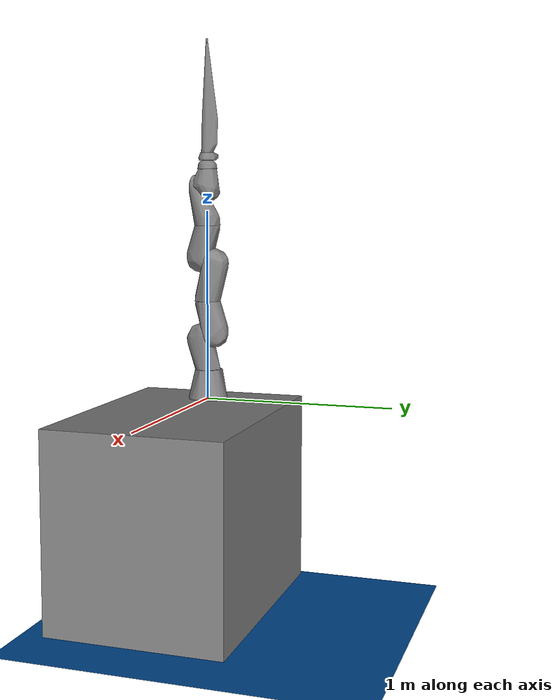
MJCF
<mujoco model="MuJoCo Model">
  <compiler angle="radian"/>

  <option timestep="0.01" integrator="implicitfast" ls_iterations="10"/>

  <default>
    <geom friction="1 0.5 0.001"/>
  </default>

  <asset>
    <mesh name="/World/envs/env_0/Table/Collisions/Cube_12" vertex="-0.455 -0.64 -0.5 0.455 -0.64 -0.5 -0.455 -0.64 0.5 0.455 -0.64 0.5 -0.455 0.64 -0.5 0.455 0.64 -0.5 0.455 0.64 0.5 -0.455 0.64 0.5" face="5 0 4 5 1 0 3 0 1 3 2 0 3 1 5 3 5 6 7 4 0 7 0 2 7 5 4 7 6 5 7 2 3 7 3 6"/>
    <mesh name="/World/envs/env_0/Robot/star_link_0/collisions_1" vertex="-0.113 0.0621089 0.004 -0.113 -0.0621089 0.004 -0.108 -0.0629519 0.00241194 -0.108 -0.0619193 0.002 -0.113 -0.0632835 0.00456715 -0.113 -0.0384168 0.147355 -0.113 0.0384168 0.147355 -0.108 0.0283668 0.149718 -0.113 -0.0213046 0.150937 -0.113 -0.0635699 0.00583972 -0.113 -0.0435089 0.14313 -0.113 0.0435089 0.14313 -0.00810543 0.102078 0.00102618 0.00667651 -0.103523 -3.04829e-15 0.102238 0.00608888 0.002 -0.0846156 0.0651456 -7.55612e-08 0.0745751 -0.0721118 -1.57652e-14 0.0612316 -0.0836131 -1.79036e-09 0.0833606 -0.061746 -6.72987e-10 0.0989096 0.0303178 0.00241194 0.0836701 0.0608855 -3.29631e-08 0.0745751 0.0721118 -1.57652e-14 0.061746 0.0833606 -6.72987e-10 0.0400552 0.0953827 0.00241194 -0.0592357 -0.0851627 -2.45119e-10 -0.048309 -0.0920057 0.0034215 0.00923825 -0.103506 0.0034215 0.0292148 -0.099241 0.00241194 0.00518155 -0.103822 0.00407431 -0.0199875 -0.102012 0.00407431 0.0731005 -0.0739069 0.00407431 0.103759 0.00632022 0.00407431 0.0991792 -0.0311352 0.00407431 0.0701854 0.0763575 0.00588204 0.0979584 0.0340676 0.00588204 0.064688 -0.0810674 0.00588204 -0.0437346 -0.0940411 0.00588204 -0.0318466 -0.0987028 0.00588204 0.00516987 -0.103539 0.00588204 -0.00680974 -0.10349 0.00588204 0.0186384 -0.102025 0.00588204 0.0429608 -0.0943972 0.00588204 0.0825076 -0.0628406 0.00588204 0.0896046 -0.0522251 0.00588204 0.10242 -0.0163295 0.00588204 0.0884162 0.0539141 0.00588204 0.0494409 0.0911704 0.00588204 0.0257099 0.100476 0.00588204 0.000425914 0.103712 0.00588204 -0.0248838 0.100684 0.00588204 0.0639279 0.0795038 0.0110887 -0.0322968 0.0599532 0.1575 0.0652955 -0.0193407 0.1575 0.00838075 0.0675817 0.1575 0.0233528 -0.0639698 0.1575 0.029999 -0.0611353 0.1575 0.0217622 0.0645285 0.1575 0.0506426 0.045528 0.1575 0.0667025 0.0137205 0.1575 -0.0569985 -0.0372644 0.1575 -0.0527919 -0.0430172 0.1575 -0.0480347 -0.0482715 0.1575 -0.065955 0.0169555 0.1575 -0.0114468 -0.06713 0.1575" face="49 0 11 49 11 51 20 15 22 36 37 10 13 24 15 13 28 39 3 15 24 3 0 15 44 52 32 43 32 52 12 15 0 12 0 49 12 22 15 12 49 48 12 48 47 14 31 44 14 44 32 53 47 48 53 49 51 53 48 49 9 36 10 25 4 24 25 9 4 25 36 9 25 37 36 29 13 39 29 37 25 29 24 13 29 25 24 2 24 4 2 3 24 1 0 3 1 2 4 1 3 2 6 8 7 6 51 11 6 7 51 62 51 7 62 7 8 5 61 8 63 29 39 63 5 10 63 61 5 63 10 37 63 37 29 42 43 52 23 12 47 23 22 12 18 20 14 18 14 32 18 32 43 18 42 16 18 43 42 21 20 22 21 22 33 45 34 20 45 33 57 45 20 21 45 21 33 19 14 20 19 20 34 19 31 14 19 34 31 58 31 34 58 45 57 58 34 45 58 44 31 58 52 44 26 28 13 17 27 13 17 13 15 17 41 27 17 18 16 17 35 41 17 15 20 17 20 18 59 62 8 38 39 28 38 63 39 38 28 26 40 27 41 40 13 27 40 26 13 40 38 26 30 16 42 30 17 16 30 35 17 56 47 53 60 8 61 60 59 8 54 40 41 54 63 38 54 38 40 46 23 47 46 47 56 46 22 23 46 33 22 46 56 57 55 41 35 55 54 41 55 35 30 55 42 52 55 30 42 50 57 33 50 46 57 50 33 46 5 6 11 5 9 10 5 11 0 5 0 1 5 4 9 5 1 4 5 8 6 55 60 61 55 53 51 55 51 62 55 57 56 55 52 58 55 61 63 55 58 57 55 62 59 55 56 53 55 59 60 55 63 54"/>
    <mesh name="/World/envs/env_0/Robot/star_link_1/collisions_2" vertex="-0.025 -4.33681e-19 -0.01 -0.0191511 0.0160697 -0.01 0.0125 -0.0216506 -0.01 -0.0043412 0.0246202 -0.01 0.0125 0.0216506 -0.01 -0.0234923 -0.0085505 -0.01 -0.0043412 -0.0246202 -0.01 -0.0234923 0.0085505 -0.01 -0.050819 -0.0405268 5.24521e-09 -0.0649321 0.0181838 0.00551542 -0.0588097 0.0339647 0.000499999 -0.0337676 0.0589518 0.000499999 3.87379e-15 0.0679906 0.000499999 3.88054e-15 0.0671954 0.015269 -0.06798 -0.000499995 0.182972 -0.0643046 -0.0364353 0.172856 3.88011e-15 0.0651675 0.025536 0.0589065 0.0337949 0.000499999 0.0679801 -0.000500001 0.182971 0.0646731 0.0207668 0.000499999 -0.0602058 -0.0319594 0.000499999 -0.0640414 -0.0228184 0.000499999 -0.0679634 -9.65081e-05 0.000499999 -0.0453628 -0.0005 0.234541 -0.0418785 -0.0450053 0.234536 -0.0413944 -0.0785373 0.221168 -0.0412661 -0.0833423 0.217188 -0.0400389 -0.100953 0.157722 -0.0563922 -0.0322348 0.217428 -0.0539905 -0.0630233 0.205116 -0.0573421 -0.0662136 0.177688 -0.0620845 -0.0005 0.211124 -0.000849792 -0.0005 0.250993 -0.0224737 -0.0005 0.247393 0.0572168 -0.000500154 0.220131 0.0344229 -0.0005 0.242208 0.0399255 -0.0972768 0.137394 0.0437985 -0.096239 0.173644 0.057076 -0.0155954 0.219583 0.0637281 -0.0140895 0.205276 0.0650069 -0.0329072 0.184325 0.0599269 -0.0309621 0.210162 0.0511324 -0.082506 0.177998 0.0518954 -0.0794905 0.146349 0.0521086 -0.0338535 0.224187 0.0586743 -0.0619861 0.169062 0.0679634 -9.64982e-05 0.000499999 0.0646294 -0.0213464 0.000499999 0.0588395 -0.0344663 0.000499999 0.0362164 -0.0580664 0.000499999 -0.002759 -0.0679843 0.000499999 -0.0382624 -0.0568004 0.000499999 0.0168696 -0.0195442 0.248582 0.0327913 -0.0189858 0.242742 0.0108202 -0.104613 0.119283 0.0263603 -0.104917 0.136774 1.01615e-06 -0.0303293 0.249743 9.11926e-07 -0.113831 0.182509 0.0273107 -0.0788628 0.22971 9.03057e-07 -0.114593 0.171913 -0.0276037 -0.0398749 0.243137 -0.0166685 -0.0800653 0.232705 0.0264511 -0.109207 0.16755 -0.0270395 -0.0943725 0.216063" face="19 17 18 4 12 17 4 17 19 9 22 14 10 22 9 10 9 14 13 18 17 13 34 18 13 16 34 13 17 12 33 32 16 33 16 23 33 23 60 33 56 32 33 60 56 31 23 16 31 14 28 31 28 23 15 14 22 21 20 30 21 22 0 21 15 22 21 30 15 27 26 30 27 63 26 27 51 50 27 30 20 27 20 51 57 27 59 57 63 27 58 44 53 58 63 57 3 12 4 7 0 22 7 22 10 8 51 20 62 59 55 62 57 59 62 37 58 62 58 57 54 55 59 54 59 27 54 27 50 36 48 43 36 43 37 36 37 62 36 62 55 49 2 48 49 50 2 49 48 36 49 36 55 49 54 50 49 55 54 5 51 8 5 8 20 5 21 0 5 20 21 6 50 51 6 2 50 6 51 5 47 48 2 47 43 48 47 45 43 46 2 4 46 4 19 46 47 2 46 19 18 52 32 56 52 56 58 52 58 53 35 16 32 35 34 16 35 32 52 35 52 53 35 44 34 35 53 44 40 46 18 40 45 47 40 47 46 39 18 34 39 40 18 39 41 40 38 34 44 38 44 41 38 39 34 38 41 39 29 30 26 29 15 30 29 28 14 29 14 15 61 63 58 61 56 60 61 58 56 25 29 26 25 28 29 25 26 63 25 63 61 24 23 28 24 60 23 24 28 25 24 61 60 24 25 61 42 41 44 42 44 58 42 58 37 42 37 43 42 43 45 42 45 40 42 40 41 11 12 3 11 13 12 11 10 14 11 14 31 11 16 13 11 31 16 1 11 3 1 7 10 1 10 11 1 4 2 1 0 7 1 3 4 1 2 6 1 5 0 1 6 5"/>
    <mesh name="/World/envs/env_0/Robot/star_link_2/collisions_3" vertex="-0.0384097 0.184 0.056684 -0.0261281 0.184 0.0630093 -0.00980327 0.184 0.0673225 0.000260393 0.184 0.0680057 0.0300441 0.184 0.0613155 0.067994 0.184 1.5761e-05 -0.0619071 0.184 -0.0281008 0.0491085 0.184 -0.0470146 -0.0491085 0.184 -0.0470146 6.84331e-15 0.184 -0.0679986 0.0619071 0.184 -0.0281008 0.0666438 0.184 0.0136488 0.0557943 0.184 0.0393363 -0.0623833 0.184 0.0273666 -0.0557943 0.184 0.0393363 -0.049757 0.184 0.0469343 -0.067994 0.184 1.5761e-05 0.0623833 0.184 0.0273666 0.049757 0.184 0.0469343 0.0675799 0.00629914 0.00563421 0.0661593 0.00447518 0.0255016 0.0194032 0.165802 -0.0633593 0.0420694 -0.0543854 2.36729e-13 -0.0667536 0.00287727 0.0206684 -0.0678306 0.000316832 0.00595594 -0.0194032 0.165802 -0.0633593 -0.0666386 -0.0136626 1.60474e-15 -0.0420694 -0.0543854 2.38199e-13 -0.000344942 -0.0679981 9.52098e-16 0.0666384 -0.0136635 6.74064e-16 -0.0418888 -0.0542726 0.0178307 -1.98355e-07 -0.0676046 0.0189677 0.066625 -0.00570178 0.0191595 0.0608965 -0.0294594 0.0144306 0.0627821 -0.0195399 0.0290702 -0.0615226 0.000492696 0.0502058 -0.0620634 -0.0173187 0.0364954 -0.0608965 -0.0294594 0.0144306 -0.0654008 -0.0134968 0.0203101 -0.05734 -0.0279662 0.0427865 -0.0485922 -0.0448359 0.0394758 -0.0508553 0.03839 0.0815325 -0.0563296 0.0204821 0.0695337 -0.0421194 -0.0430336 0.0692495 0.0600738 -0.00381922 0.0545268 0.0563271 0.0204672 0.0695436 0.0403519 0.0506809 0.0954162 0.0508524 0.0383822 0.08154 -0.0393608 0.0488966 0.0968463 -0.040375 -0.0345435 0.0838129 0.0393379 0.0332929 0.100228 0.0396532 -0.00428232 0.100338 -0.0220134 -0.0609491 0.0465274 -0.0211113 0.0676583 0.100734 -0.0261761 0.010869 0.109326 -0.0106698 0.0518792 0.108076 -0.0217844 -0.0475206 0.0810315 -0.0213191 -0.0126448 0.107476 0.0109134 -0.0346595 0.098644 -1.66755e-07 -0.0574991 0.0688777 0.0210626 0.0534096 0.105092 0.0260559 0.0402018 0.106393 -1.15321e-07 0.00650645 0.114408 0.00536439 0.0659892 0.104572" face="37 26 27 37 27 30 31 28 22 31 22 59 52 59 56 52 56 43 52 43 30 52 31 59 52 28 31 52 27 28 52 30 27 54 62 55 54 57 62 54 55 48 58 56 59 58 57 56 58 59 22 58 62 57 58 51 62 58 34 51 6 26 16 6 8 26 25 8 9 25 26 8 25 27 26 25 28 27 24 16 26 24 23 16 38 37 36 38 26 37 38 24 26 38 23 24 35 38 36 35 23 38 35 42 13 35 13 16 35 16 23 10 5 29 10 29 7 21 9 7 21 7 29 21 29 22 21 22 28 21 28 25 21 25 9 19 29 5 32 34 29 32 29 19 32 5 20 32 19 5 44 51 34 44 45 51 44 34 32 44 32 20 33 29 34 33 22 29 33 34 58 33 58 22 63 3 55 63 60 3 63 55 62 63 62 60 4 3 60 4 46 18 2 55 3 0 15 48 53 48 55 53 1 0 53 0 48 53 2 1 53 55 2 14 48 15 41 13 42 41 54 48 41 14 13 41 48 14 11 20 5 11 44 20 11 17 45 11 45 44 12 18 46 47 45 17 47 46 50 47 17 12 47 12 46 47 51 45 47 50 51 61 50 46 61 46 4 61 4 60 61 60 62 61 62 51 61 51 50 49 56 57 49 43 56 49 57 54 49 42 35 49 41 42 49 54 41 39 36 37 39 43 49 39 35 36 39 49 35 40 30 43 40 37 30 40 43 39 40 39 37 12 14 15 12 16 13 12 3 4 12 6 16 12 5 10 12 9 8 12 7 9 12 2 3 12 15 0 12 11 5 12 8 6 12 10 7 12 4 18 12 1 2 12 0 1 12 13 14 12 17 11"/>
    <mesh name="/World/envs/env_0/Robot/star_link_3/collisions_4" vertex="0.00588449 -0.0677449 0.00838364 -6.77743e-17 -0.068 1.23978e-08 -0.0295041 0.0612659 1.23978e-08 -0.0423973 0.0531645 1.23978e-08 -0.0612659 0.0295041 1.23978e-08 -0.0612659 -0.0295041 1.23978e-08 -0.0531645 -0.0423973 1.23978e-08 -0.0295041 -0.0612659 1.23978e-08 0.0295041 -0.0612659 1.23978e-08 -0.068 9.94235e-17 1.23978e-08 0.0423973 -0.0531645 1.23978e-08 0.0612659 0.0295041 1.23978e-08 -5.11191e-17 0.068 1.23978e-08 0.068 7.44407e-17 1.23978e-08 0.0295041 0.0612659 1.23978e-08 0.0423973 0.0531645 1.23978e-08 -3.89874e-15 -0.0679949 0.033 0.00286025 -0.0679398 0.033 0.0678546 0.00565301 0.215235 0.0658472 0.0275683 0.210122 -0.0664681 0.0231151 0.211868 -0.0679801 0.000500001 0.215471 -0.0295041 -0.0612659 0.033 -0.0151314 -0.0662951 0.033 -0.0480833 -0.0480833 0.033 -0.0641841 -0.022459 0.033 0.0665446 0.0140704 0.033 0.0527012 0.0005 0.259041 0.0675785 0.0005 0.222988 0.0403702 0.100831 0.21366 0.0399305 0.0976141 0.171296 0.0666011 0.0193767 0.221207 0.0608004 0.0147581 0.245115 0.0552747 0.0705703 0.218231 0.0471538 0.090827 0.200921 0.0627216 0.0292701 0.235144 0.0555873 0.0719692 0.196036 -0.0663138 0.000500202 0.230679 -0.0492667 0.000500183 0.263154 -0.0613273 0.000500001 0.245291 -0.0303096 0.0005 0.27678 -0.000809182 0.0005 0.283494 -0.057076 0.0155954 0.252083 -0.0399275 0.0976002 0.171223 -0.0400761 0.101204 0.193665 -0.0491668 0.079309 0.232946 -0.0555309 0.0720982 0.1955 -0.0608357 0.0533203 0.213229 -0.0619846 0.0368582 0.232854 -0.0653522 0.0206763 0.229028 -0.0663972 0.0147646 0.033 0.0327897 0.0189858 0.275243 0.0325136 0.0690302 0.26509 -0.0322329 0.0862144 0.253968 -0.0161031 0.108891 0.171514 -0.00549447 0.108196 0.23528 -0.021375 0.111138 0.201612 -1.00102e-06 0.0512809 0.278736 -0.0317198 0.102872 0.228497 -0.0273107 0.0788628 0.26221 0.0161014 0.108891 0.171514 -8.87458e-07 0.113073 0.183237 -9.0306e-07 0.114593 0.204413 0.0213734 0.111138 0.201612" face="31 35 28 17 41 16 17 16 1 17 1 0 27 41 17 27 17 28 10 13 28 2 54 12 2 3 43 2 43 54 4 43 3 61 12 54 61 60 12 14 12 60 14 30 15 14 60 30 11 15 30 33 35 31 33 52 35 33 29 52 34 30 29 34 11 30 34 36 11 34 33 36 34 29 33 63 61 62 63 60 61 63 30 60 63 29 30 57 52 59 55 52 29 55 63 62 55 29 63 55 59 52 56 62 61 56 61 54 56 55 62 56 58 55 44 43 4 44 4 46 44 58 56 44 54 43 44 56 54 53 59 55 53 55 58 45 53 58 45 44 46 45 58 44 21 20 9 21 9 25 49 21 37 49 20 21 50 9 20 50 4 9 50 46 4 47 48 45 47 45 46 47 49 48 47 20 49 47 46 50 47 50 20 42 48 49 42 45 48 42 53 45 42 38 59 42 59 53 18 28 13 18 31 28 26 13 11 26 11 36 32 28 35 32 27 28 32 35 52 32 52 27 51 41 27 51 27 52 51 57 41 51 52 57 23 1 16 23 38 22 23 7 1 23 22 7 24 22 37 24 37 21 24 6 7 24 7 22 24 25 6 24 21 25 39 37 22 39 22 38 39 38 42 39 49 37 39 42 49 5 25 9 5 6 25 8 0 1 8 17 0 8 28 17 8 10 28 19 36 33 19 33 31 19 26 36 19 13 26 19 18 13 19 31 18 40 59 38 40 57 59 40 41 57 40 38 23 40 16 41 40 23 16 8 2 12 8 1 7 8 12 14 8 11 13 8 13 10 8 9 4 8 5 9 8 3 2 8 4 3 8 14 15 8 15 11 8 7 6 8 6 5"/>
    <mesh name="/World/envs/env_0/Robot/star_link_4/collisions_5" vertex="-0.0384097 0.184 0.056684 -0.0261281 0.184 0.0630093 -0.00980327 0.184 0.0673225 0.000260393 0.184 0.0680057 0.0300441 0.184 0.0613155 0.067994 0.184 1.5761e-05 0.0666438 0.184 0.0136488 0.0557943 0.184 0.0393363 0.0623833 0.184 0.0273666 -7.70372e-34 0.184 -0.0679986 0.0619071 0.184 -0.0281008 -0.0623833 0.184 0.0273666 -0.0557943 0.184 0.0393363 -0.067994 0.184 1.5761e-05 0.0491085 0.184 -0.0470146 0.049757 0.184 0.0469343 -0.0619071 0.184 -0.0281008 -0.0491085 0.184 -0.0470146 -0.049757 0.184 0.0469343 0.0675799 0.00629915 0.00563421 0.0661593 0.00447519 0.0255016 0.0194032 0.165802 -0.0633593 0.0420694 -0.0543854 2.3364e-13 -0.0667536 0.0028773 0.0206684 -0.0678306 0.000316868 0.00595594 -0.0194032 0.165802 -0.0633593 -0.0420694 -0.0543854 2.345e-13 -0.0666386 -0.0136626 -2.53666e-15 -0.000344942 -0.0679981 -2.34695e-15 0.0666384 -0.0136635 -2.53666e-15 -0.0418888 -0.0542726 0.0178307 -1.98355e-07 -0.0676047 0.0189677 0.066625 -0.00570177 0.0191595 0.0608965 -0.0294595 0.0144306 0.0627821 -0.0195399 0.0290702 -0.0615226 0.000492702 0.0502058 -0.0620634 -0.0173187 0.0364954 -0.0608965 -0.0294595 0.0144306 -0.0654008 -0.0134967 0.0203101 -0.05734 -0.0279662 0.0427865 -0.0485922 -0.0448359 0.0394758 -0.0508553 0.0383901 0.0815325 -0.0563296 0.0204821 0.0695337 -0.0421194 -0.0430336 0.0692495 0.0600738 -0.00381922 0.0545268 0.0563271 0.0204672 0.0695436 0.0403519 0.0506809 0.0954162 0.0508524 0.0383822 0.08154 -0.0393608 0.0488966 0.0968463 -0.040375 -0.0345434 0.0838129 0.0393379 0.0332929 0.100228 0.0396532 -0.00428229 0.100338 -0.0220134 -0.0609491 0.0465274 -0.0211113 0.0676583 0.100734 -0.0261761 0.010869 0.109326 -0.0106698 0.0518792 0.108076 -0.0217844 -0.0475206 0.0810315 -0.0213191 -0.0126448 0.107476 0.0109134 -0.0346595 0.098644 -1.66755e-07 -0.0574991 0.0688777 0.0210626 0.0534096 0.105092 0.0260559 0.0402017 0.106393 -1.15321e-07 0.00650645 0.114408 0.00536439 0.0659892 0.104572" face="37 27 26 37 26 30 31 28 22 31 22 59 52 59 56 52 56 43 52 43 30 52 31 59 52 28 31 52 26 28 52 30 26 54 62 55 54 57 62 54 55 48 58 56 59 58 57 56 58 59 22 58 62 57 58 51 62 58 34 51 16 27 13 16 17 27 25 17 9 25 27 17 25 26 27 25 28 26 24 13 27 24 23 13 38 37 36 38 27 37 38 24 27 38 23 24 35 38 36 35 23 38 35 42 11 35 11 13 35 13 23 10 5 29 10 29 14 21 9 14 21 14 29 21 29 22 21 22 28 21 28 25 21 25 9 19 29 5 32 34 29 32 29 19 32 5 20 32 19 5 44 51 34 44 45 51 44 34 32 44 32 20 33 29 34 33 22 29 33 34 58 33 58 22 63 3 55 63 60 3 63 55 62 63 62 60 4 3 60 4 46 15 2 55 3 0 18 48 53 48 55 53 1 0 53 0 48 53 2 1 53 55 2 12 48 18 41 11 42 41 54 48 41 12 11 41 48 12 6 20 5 6 44 20 6 8 45 6 45 44 7 15 46 47 45 8 47 46 50 47 8 7 47 7 46 47 51 45 47 50 51 61 50 46 61 46 4 61 4 60 61 60 62 61 62 51 61 51 50 49 56 57 49 43 56 49 57 54 49 42 35 49 41 42 49 54 41 39 36 37 39 43 49 39 35 36 39 49 35 40 30 43 40 37 30 40 43 39 40 39 37 7 12 18 7 13 11 7 3 4 7 16 13 7 5 10 7 9 17 7 14 9 7 2 3 7 18 0 7 6 5 7 17 16 7 10 14 7 4 15 7 1 2 7 0 1 7 11 12 7 8 6"/>
    <mesh name="/World/envs/env_0/Robot/star_link_5/collisions_6" vertex="0.0662951 0.0151314 -1.14441e-08 -0.0295041 0.0612659 -1.14441e-08 0.0423973 0.0531645 -1.14441e-08 0.0612659 0.0295041 -1.14441e-08 -1.98102e-16 0.068 -1.14441e-08 0.0295041 0.0612659 -1.14441e-08 -0.068 -4.37723e-16 -1.14441e-08 -0.0662951 0.0151314 -1.14441e-08 0.068 5.20287e-16 -1.14441e-08 -0.0612659 0.0295041 -1.14441e-08 -0.0423973 0.0531645 -1.14441e-08 -0.0423973 -0.0531645 -1.14441e-08 -0.0612659 -0.0295041 -1.14441e-08 0.0151314 -0.0662951 -1.14441e-08 7.68236e-16 -0.068 -1.14441e-08 0.00588449 -0.0677449 0.00838362 0.0662951 0.0151314 0.033 -0.038832 0.0778924 0.246275 0.0479435 0.0815925 0.222294 0.0420736 0.0783594 0.241483 0.0280061 0.0782472 0.255971 -0.000460964 0.0773425 0.264908 -0.0287829 0.0783041 0.255407 -0.0469391 0.0794409 0.230291 -0.0482522 0.0799938 0.224525 -0.0122324 0.0785798 0.262352 0.0301314 0.0607 0.256972 0.0471374 0.0607 0.235647 -0.0471374 0.0607 0.235647 0.022345 0.0626499 0.2619 0.00461642 0.0626499 0.266793 0.0462568 0.0835578 0.199535 -0.0385544 0.0818241 0.241022 -0.0390021 0.0876097 0.218643 -0.0184025 0.0926362 0.230859 -0.0217784 0.0927113 0.227034 0.0188332 0.093234 0.227933 0.0126883 0.0876027 0.24757 -0.023764 0.088444 0.2397 -0.00303358 0.0866257 0.251376 -0.0462566 0.083558 0.199534 -0.022242 0.0607 0.261686 7.84891e-16 -0.068 0.03301 -0.029983 0.0928902 0.19768 -6.2829e-09 0.0990203 0.186238 0.0318747 0.0878836 0.160402 -7.95499e-09 0.0974087 0.216605 -0.0318747 0.0878836 0.160402 -0.0110723 0.0955358 0.158835 -0.0223951 0.0942484 0.172058 0.0299837 0.0928908 0.197681 0.0109609 0.0933453 0.146484 0.0110723 0.0955358 0.158835 -0.06621 0.0154994 0.0385 -0.0654057 -0.0186036 0.0385 -0.0237217 -0.0637282 0.0385 0.00439293 -0.067858 0.0385 0.0679751 -0.00183876 0.0385 -1.26996e-12 -0.0672865 0.0459877 -6.85124e-13 -0.0618647 0.0599198 -0.0678109 0.00281869 0.0445204 -0.0560246 -0.0356187 0.0520642 -0.00864513 -0.0613201 0.0598757 -0.0414069 -0.0478499 0.0590001" face="27 57 18 61 28 54 16 57 8 16 18 57 13 8 57 59 30 41 52 48 44 52 4 48 52 51 4 50 36 18 50 45 52 50 52 44 26 30 59 26 59 27 19 27 18 19 18 36 19 36 20 19 26 27 19 20 26 37 20 36 7 24 9 7 53 24 60 6 54 60 7 6 60 53 7 60 54 28 60 28 24 60 24 53 1 48 4 1 10 47 12 54 6 12 61 54 12 11 61 55 11 14 17 28 41 0 16 8 0 3 18 0 18 16 5 4 51 5 45 2 5 52 45 5 51 52 15 14 13 56 57 27 56 27 59 56 59 58 56 13 57 56 15 13 56 14 15 46 50 44 46 36 50 46 35 34 46 34 39 46 44 43 46 43 35 46 39 37 46 37 36 40 43 47 40 47 10 40 10 9 40 9 24 33 35 43 33 40 24 33 43 40 49 47 43 49 1 47 49 48 1 49 44 48 49 43 44 31 50 18 31 45 50 31 2 45 31 3 2 31 18 3 29 30 26 29 26 20 63 61 11 63 11 55 63 28 61 63 41 28 62 58 59 62 55 58 62 63 55 62 59 41 62 41 63 21 39 25 21 37 39 21 20 37 21 30 29 21 29 20 21 41 30 21 25 41 23 24 28 23 28 17 23 33 24 22 41 25 22 17 41 42 56 58 42 14 56 42 58 55 42 55 14 32 35 33 32 23 17 32 33 23 32 17 22 38 32 22 38 39 34 38 34 35 38 35 32 38 25 39 38 22 25 5 8 13 5 6 7 5 0 8 5 12 6 5 1 4 5 9 10 5 14 11 5 2 3 5 13 14 5 7 9 5 10 1 5 11 12 5 3 0"/>
    <mesh name="/World/envs/env_0/Robot/star_link_6/collisions_7" vertex="-4.92299e-16 -0.025 -0.0105 0.025 -1.43051e-08 -0.0105 0.0146946 0.0909 0.0397746 -0.0146946 0.0909 0.0397746 0.0237764 0.0909 0.0677254 1.73911e-16 0.0909 0.085 -5.06463e-16 0.025 -0.0105 0.00311695 0.0804 0.00840323 0.023417 -0.0458057 5.0664e-09 0.0484641 0.0172014 -2.29627e-07 -0.0413251 0.0305568 -2.61009e-06 -0.0505813 -0.00938155 -1.29879e-06 0.0413233 -0.0306507 -4.659e-06 0.0461546 0.0804012 0.036874 -0.0377081 0.0803999 0.0246372 0.0513577 0.0804002 0.0541092 -0.0459565 0.0804003 0.083697 0.038096 0.0804 0.0949616 0.00681709 0.0804009 0.111264 -0.0322762 0.0804049 0.100397 -0.0519661 0.0795982 0.0601703 -0.0463021 0.0796295 0.083592 -0.0482853 0.0786443 0.0406547 -0.0380014 -0.0361332 0.00248919 -0.0661488 -0.00542821 0.050212 -0.0642931 -0.0170169 0.0432981 -0.0381013 -0.0494682 0.0188374 -0.0627855 0.00478004 0.0311465 0.0381013 -0.0494682 0.0188374 0.0157744 -0.0545297 0.0113383 0.0548676 -0.0346154 0.029858 0.0661525 -0.0058185 0.0505649 0.0629298 0.0042759 0.0314851 0.0519496 -0.0067531 0.00280143 0.0563513 -0.0106893 0.0147112 0.00381828 0.0687721 0.113201 0.0644291 -0.0187196 0.0459414 0.0396145 -0.0678708 0.104276 0.0604808 0.0120482 0.0761681 0.0614075 -0.0263543 0.0781702 0.0572169 -0.0465245 0.0613121 0.0455416 -0.0682126 0.084841 0.0438626 -0.0614948 0.0472619 0.05415 -0.0164822 0.098583 -0.0650475 -0.00853933 0.0651162 -0.039937 -0.0250753 0.11854 -0.0396189 -0.0677102 0.104471 -0.0388161 -0.0732348 0.0659064 -0.0572152 -0.046529 0.0613154 -0.0502914 -0.0209855 0.105854 -0.0445007 0.00583731 0.109003 -0.0455384 -0.0682167 0.0848441 -0.0481406 -0.0548169 0.0441087 -0.0551589 -0.044574 0.0895909 0.0316785 -0.0465624 0.119956 0.0351906 -0.0756557 0.0667576 0.0108903 -0.0826119 0.0636345 -2.9999e-06 -0.0834505 0.0640516 0.0305373 -0.0669166 0.0393399 -3.08336e-06 -0.0268915 0.126909 -0.016541 0.00524043 0.123085 -0.0261009 -0.0757092 0.0542427 -0.00555377 -0.0847545 0.0950823 -3.07507e-06 -0.0651852 0.118716" face="63 59 45 63 45 46 11 6 0 11 10 6 11 27 10 18 5 19 18 17 5 54 59 63 54 63 37 54 18 59 54 17 18 62 37 63 62 55 37 62 63 46 7 10 14 7 6 10 7 9 6 61 47 26 61 29 57 61 26 29 61 57 62 61 62 47 51 46 53 51 62 46 51 47 62 52 26 47 23 11 0 23 29 26 23 26 52 23 52 11 41 37 55 41 39 37 41 40 39 42 40 41 42 41 55 32 15 31 36 31 39 36 39 40 36 32 31 36 34 32 1 12 0 1 0 6 1 6 9 33 9 32 33 32 34 33 1 9 33 12 1 30 36 40 30 34 36 30 40 42 30 33 34 30 12 33 30 28 12 30 42 28 8 12 28 8 0 12 8 23 0 8 29 23 56 57 29 56 62 57 56 55 62 4 5 17 4 17 15 35 59 18 38 15 17 38 31 15 38 39 31 3 2 7 3 7 14 13 9 7 13 32 9 13 15 32 13 7 2 13 2 4 13 4 15 48 51 53 48 47 51 48 52 47 48 53 44 58 29 8 58 55 56 58 56 29 58 8 28 58 28 42 58 42 55 60 18 19 60 35 18 60 19 45 60 45 59 60 59 35 43 39 38 43 37 39 43 54 37 43 17 54 43 38 17 49 21 44 49 44 53 49 53 46 49 46 45 20 27 24 20 24 44 20 44 21 16 5 3 16 19 5 16 21 19 16 20 21 16 3 20 25 44 24 25 48 44 25 24 27 25 27 11 25 11 52 25 52 48 50 19 21 50 21 49 50 45 19 50 49 45 22 3 14 22 20 3 22 27 20 22 10 27 22 14 10 3 5 4 3 4 2"/>
    <mesh name="/World/envs/env_0/Robot/star_link_7/collisions_8" vertex="-0.0216011 -0.0213365 0.0449975 -0.0304977 2.29008e-06 0.0449975 -0.0246728 0.0179297 0.0449975 -0.00883658 0.0291341 0.0449975 0.028943 0.00909112 0.0449975 0.0204107 -0.0226636 0.0449975 0.0189807 0.0448823 0.0224975 0.0448823 -0.0189761 0.0224975 -0.0428209 -0.00451571 0.0347599 -0.0409143 -0.0209888 0.0313 -0.0298829 -0.0306555 0.0349703 -0.0155611 -0.0400485 0.0348397 0.0273509 -0.0387742 0.0281299 0.0360424 -0.0250105 0.0340009 0.0389549 -0.027521 0.0272993 0.0467598 -0.00807844 0.0281299 0.0470078 0.00808412 0.0272993 0.0400684 0.0199075 0.0330432 0.0422632 0.022713 0.0259974 -0.0139913 0.0458581 0.0259774 0.0328703 -0.0365434 0.0190812 -0.0328658 -0.0365434 0.0190812 -0.0429973 -0.0232165 0.0194395 -0.0398729 0.0284487 0.0200812 0.0490852 -0.00259819 0.0190812 0.000733475 0.0474803 0.0280276 0.02097 0.0376465 0.0347345 0.0243745 -0.0407492 0.0280276 0.0124312 -0.0412561 0.0347345 0.00809068 -0.0472877 0.0259974 -0.00356964 -0.0462944 0.0305176 0.0506192 0.00844876 0.00649742 0.0125998 0.0497488 0.00649742 -0.0125953 0.0497488 0.00649742 -0.0206115 0.0469969 0.00649742 -0.0451295 0.0244264 0.00649742 -0.0485341 -0.0166603 0.00649742 -0.00423545 -0.0511393 0.00649742 0.0280699 -0.0429584 0.00649742 0.0404984 -0.0315172 0.00649742 -0.0267425 -0.0445251 0.000549715 0.00269507 -0.0518698 0.000549715 0.0205885 -0.047686 0.000549715 0.0467285 -0.022683 0.000549715 0.0507497 -0.011073 0.000549715 0.0519314 0.00115677 0.000549715 0.0385855 0.0347773 0.000549715 0.000387114 0.0519428 0.000549715 -0.0519041 0.00192615 0.000549715 -0.0514071 0.00190773 -2.58205e-06 -0.0504164 -0.0102209 -2.58205e-06 -0.0466046 -0.0217776 -2.58205e-06 -0.0315165 -0.0406563 -2.58205e-06 -0.00947272 -0.0505623 -2.58205e-06 0.0146621 -0.0493094 -2.58205e-06 0.0355616 -0.0371741 -2.58205e-06 0.0462812 -0.0224658 -2.58205e-06 0.0478175 0.0189829 -2.58205e-06 -0.00570361 0.0511296 -2.58205e-06 -0.0233659 0.0463733 0.000363033 -0.049879 0.0140304 0.00016288 -0.051642 -0.00421625 0.00016288 -0.0507806 -0.0102948 0.00016288 -0.0418728 0.0305212 0.00016288" face="4 13 15 1 9 0 63 58 49 22 21 9 5 13 4 10 9 21 10 0 9 52 40 21 37 30 40 3 25 19 8 9 1 26 3 4 26 25 3 57 58 46 60 49 48 60 63 49 60 48 8 60 8 23 59 58 63 59 63 23 11 10 21 11 21 40 11 40 30 11 0 10 28 11 30 28 5 0 28 0 11 29 37 41 29 30 37 29 42 27 29 28 30 29 27 28 51 21 22 51 52 21 53 40 52 53 41 37 53 37 40 2 23 8 2 8 1 2 19 23 2 3 19 47 46 58 47 32 46 47 25 32 6 46 32 6 32 25 6 25 26 17 26 4 56 57 45 35 23 63 35 60 23 35 63 60 33 58 59 33 47 58 33 19 25 33 25 47 38 42 55 38 27 42 54 41 53 54 29 41 54 42 29 54 55 42 14 39 7 14 15 13 14 7 15 16 4 15 16 17 4 43 55 56 43 39 55 43 7 39 34 19 33 34 33 59 34 23 19 34 59 23 50 51 62 61 48 49 61 8 48 61 49 50 61 50 62 36 9 8 36 22 9 36 8 61 36 61 62 36 51 22 36 62 51 20 39 14 20 55 39 20 38 55 24 16 15 31 45 57 31 24 45 31 16 24 18 17 16 18 57 46 18 31 57 18 16 31 18 46 6 18 6 26 18 26 17 44 56 45 44 43 56 44 45 24 44 24 15 44 15 7 44 7 43 12 20 14 12 14 13 12 27 38 12 38 20 12 28 27 12 13 5 12 5 28 2 0 5 2 1 0 2 5 4 2 4 3 50 56 55 50 49 58 50 55 54 50 58 57 50 52 51 50 53 52 50 57 56 50 54 53"/>
    <mesh name="/World/envs/env_0/Robot/ati/collisions_9" vertex="0.00897413 0.0451161 -0.0286 0.0176034 0.0424984 -0.0406 0.046 0 -0.0406 0.0459446 -0.00225705 -0.0286 0.0424985 -0.0176033 -0.0406 0.0424985 -0.0176033 -0.0286 0.0340838 -0.0308916 -0.0286 0.0325269 -0.0325269 -0.0406 0 -0.046 -0.0406 -0.00112891 -0.0459861 -0.0286 -0.0133532 -0.0440192 -0.0406 -0.0176035 -0.0424984 -0.0286 -0.0206822 -0.0410882 -0.0286 -0.0226734 -0.0400239 -0.0286 -0.0255563 -0.0382475 -0.0406 -0.0274023 -0.0369474 -0.0286 -0.0355586 -0.0291819 -0.0286 -0.0355586 -0.0291819 -0.0406 -0.0394556 -0.0236486 -0.0286 -0.0410884 -0.0206819 -0.0286 -0.0424985 -0.0176032 -0.0286 -0.0424985 -0.0176032 -0.0406 -0.043311 -0.0154967 -0.0286 -0.0440193 -0.0133529 -0.0286 -0.0457785 -0.00450849 -0.0406 -0.0451161 0.00897443 -0.0406 -0.0405682 0.0216845 -0.0406 -0.0325266 0.0325271 -0.0406 -0.00897372 0.0451162 -0.0406 -0.00898051 -0.0286242 -2.75262e-05 -0.0290422 -0.0075199 -2.67141e-05 -0.0281327 0.0104188 -1.29081e-05 -0.0195414 0.0227625 2.40654e-06 0.00303465 0.0298461 2.40803e-05 0.0217435 0.0206692 3.10168e-05 0.029654 0.00454313 2.49818e-05 -0.00303465 -0.0298461 -2.40766e-05 0.0195414 -0.0227625 -2.40281e-06 0.0281327 -0.0104188 1.29119e-05 -0.0401348 0.0457471 -0.00817019 -0.0510556 0.0306624 -0.0251303 -0.0510512 0.0311942 -0.0112084 -0.0499873 0.0303795 -0.00868917 -0.0410033 0.0470236 -0.026378 -0.0406173 0.0469255 -0.00920081 -0.0531747 0.0164416 -0.0177044 -0.0520225 0.0175591 -0.0215419 0.0368356 0.00348914 -0.000570547 -0.0310479 0.020125 -0.00060793 -0.0313883 -0.0195889 -0.00063727 -0.0332361 -0.0162577 -0.000636179 0.032356 0.017948 -0.000563227 0.00880718 0.035937 -0.000567243 0.00818986 -0.0360819 -0.000620451 0.0219539 -0.0297828 -0.000605784 0.0248998 -0.0273677 -0.000601865 -0.0239441 -0.0282069 -0.000638146 -0.0142317 -0.0341527 -0.000635408 -0.0136442 0.0343926 -0.00058477 0.0351502 -0.0115535 -0.000582796 0.0382476 0.0255562 -0.0286 0.0382476 0.0255562 -0.0406 0.0176034 -0.0424985 -0.0286 -0.00674969 -0.0455021 -0.0286" face="9 8 62 7 62 8 61 60 2 61 1 60 14 13 15 63 57 11 63 8 9 53 9 62 53 36 57 53 57 63 53 63 9 24 45 46 24 21 45 23 45 21 31 32 48 31 30 36 39 52 44 6 62 7 6 7 4 29 57 36 29 36 30 37 36 53 37 31 36 0 44 52 0 43 44 0 60 1 0 52 60 33 34 52 33 35 34 33 32 31 33 31 37 28 27 43 28 0 1 28 43 0 26 43 27 40 25 24 40 24 46 40 46 45 40 26 25 40 43 26 12 11 57 12 57 13 12 13 14 17 16 18 17 18 21 17 15 16 17 14 15 10 8 63 10 63 11 10 11 12 10 12 14 54 53 62 54 62 6 54 6 55 54 55 37 54 37 53 22 21 20 22 23 21 22 20 45 22 45 23 19 20 21 19 21 18 49 18 16 58 52 39 58 32 33 58 33 52 58 48 32 58 39 48 3 2 60 3 60 47 3 4 2 51 47 60 51 52 34 51 60 52 51 34 35 51 35 47 38 35 33 38 33 37 38 47 35 38 37 55 41 40 45 41 44 43 41 43 40 56 57 29 56 29 30 56 30 49 56 13 57 56 15 13 56 16 15 56 49 16 50 49 30 50 31 48 50 30 31 50 45 20 50 20 19 50 19 18 50 18 49 5 6 4 5 4 3 42 41 45 42 45 50 42 50 48 42 48 39 42 39 44 42 44 41 59 55 6 59 6 5 59 38 55 59 47 38 59 3 47 59 5 3 10 7 8 10 61 2 10 21 24 10 2 4 10 27 28 10 17 21 10 4 7 10 1 61 10 26 27 10 24 25 10 28 1 10 25 26 10 14 17"/>
    <mesh name="/World/envs/env_0/Robot/endo360_link_0/collisions_10" vertex="0.0249094 0.0192813 0 0.00634086 -0.0308552 0 -0.0311367 0.00476992 0 -0.022831 -0.0217024 0 -0.00942993 -0.0300553 0 -0.0295392 -0.0109401 0 -0.0249094 0.0192813 0 -0.00942993 0.0300553 0 0.00942993 0.0300553 0 0.0249094 -0.0192813 0 0.0314596 0.00159544 0 0 -0.0305 0.00799996 0.0298847 -0.00983882 0.00799996 0.0314596 0.00159544 0.00799996 0.0311367 0.00476992 0.00799996 0.0179949 -0.025854 0.00799996 0.00634086 -0.0308552 0.00799996 -0.000972876 -0.00591487 0.568175 -0.00439203 -0.00407946 0.567675 -0.00298333 -0.00519913 0.568042 0.00235122 -0.00551403 0.568256 0.00497669 0.00313038 0.567967 0.00597453 0.000480256 0.567853 0.00588191 0.00047281 0.567963 0.00447321 -0.0039897 0.5677 1.40919e-05 -0.00591815 0.569005 -0.00118047 -0.00582456 0.568727 -0.00478226 0.00361252 0.567857 -0.00531298 -0.00277454 0.567853 -0.00568795 0.00189024 0.567853 -0.00559974 -0.00186092 0.567963 -0.00588191 0.00047281 0.567963 -9.38108e-07 0.005925 0.569004 -0.000404839 0.00590509 0.568968 -0.0147778 0.0519422 0.16 0.0015375 0.0589377 0.16 -0.0015375 0.0589377 0.169 0.00457227 0.0584416 0.169 0.0157286 0.0505364 0.16 0.016428 0.0489902 0.169 0.016428 0.0489902 0.16 0.0168559 0.0473478 0.169 -0.0157286 0.0505364 0.16 -0.0157286 0.0505364 0.169 0.00228768 -0.025 0.179754 0.0155963 -0.0228567 0.183 -0.011 -0.025 0.183 -0.048 -0.00599998 0.1658 -0.0479072 -0.00420058 0.1658 -0.04573 0.00261956 0.1658 -0.032747 -0.0233551 0.1658 -0.0362495 -0.0225285 0.1658 -0.044763 -0.0161399 0.1658 -0.0471711 -0.011322 0.1658 -0.0469533 -0.011346 0.0833 -0.0376587 -0.0219688 0.0907 -0.0475397 -0.00201255 0.0907 -0.0390125 -0.0195476 0.0409999 -0.0456021 -0.0112844 0.0409999 0.00467425 0.0568642 0.0412 -0.0161244 0.0468009 0.0412 0.0155514 0.048025 0.0412 -0.0136852 0.0492176 0.0528 0.0092293 0.0548684 0.1163" face="36 35 59 37 59 35 37 35 36 57 54 58 52 54 57 19 52 51 32 37 36 43 27 36 43 36 34 43 49 27 7 59 8 7 6 60 7 60 59 40 39 14 40 14 61 0 14 10 0 61 14 0 8 59 0 59 61 42 34 60 42 43 34 42 49 43 62 34 36 62 60 34 62 36 59 62 59 60 56 58 54 56 6 58 56 60 6 56 49 42 56 42 60 56 54 47 50 51 4 50 4 46 44 45 25 44 25 46 44 16 45 44 46 16 11 4 16 11 16 46 11 46 4 15 45 16 15 9 45 1 16 4 1 15 16 1 9 15 12 9 10 12 45 9 12 24 45 12 22 24 2 58 6 2 5 58 55 4 51 55 57 4 55 51 52 55 52 57 3 4 57 3 58 5 3 57 58 30 25 31 30 31 47 48 47 31 48 56 47 48 49 56 29 27 49 29 49 48 29 48 31 17 51 50 17 46 25 17 50 46 26 28 19 26 25 30 26 30 28 26 17 25 26 19 51 26 51 17 18 28 52 18 19 28 18 52 19 13 10 14 13 14 22 13 12 10 13 22 12 41 39 22 41 14 39 41 22 14 20 25 45 20 45 24 23 32 25 23 25 20 23 24 22 23 20 24 33 31 25 33 25 32 33 29 31 33 27 29 33 36 27 33 32 36 21 22 39 21 39 37 21 37 32 21 23 22 21 32 23 38 40 61 38 37 39 38 39 40 53 52 28 53 28 30 53 30 47 53 47 54 53 54 52 63 59 37 63 37 38 63 61 59 63 38 61 3 10 9 3 6 7 3 1 4 3 0 10 3 2 6 3 7 8 3 8 0 3 9 1 3 5 2"/>
    <mesh name="/World/envs/env_0/Robot/endo360_link_1/collisions_11" vertex="-2.33643e-05 -0.00449997 -0.00316214 -0.00299507 -0.00449997 -0.00101447 0 0.00449997 -0.00316226 0.00299996 -0.0025 0.0449999 0.00334817 -0.00432611 -0.000569544 -0.00388908 -0.00359303 -0.00148827 -0.00531256 0.00123274 -0.000711752 -0.0050813 -0.00182277 -0.00105238 -0.00274998 -0.00377882 -0.00289959 -0.00142348 0 -0.00531256 -0.00476313 0 -0.00274998 0.00210476 -0.00254065 -0.00440055 -0.00436342 -0.0033195 -0.000437026 -0.00274998 0.00289959 -0.00377882 0.00210476 0.00194454 -0.00469452 0.00388908 0.00385576 -0.000507628 0.00388908 0.00359303 -0.00148827 0.00388908 -0.00359303 -0.00148827 0.00436342 -0.0033195 -0.000437026 0.00476313 0 -0.00274998 0.0050813 0.00182277 -0.00105238 -0.00405627 0.00442105 0.0215997 -0.00529468 0.0028224 0.0240596 -0.00489241 0.00347328 0.022724 0.00253999 0.00543582 0.0208414 -0.00299752 0.00519753 0.0209906 0 0.00599998 0.0205456 -0.00205207 0.00563812 0.0207265 0.0043301 0.0025 0.0449999 0.00598282 0.000453751 0.044 -0.0043441 -0.00413859 0.0298795 -0.00299996 -0.00519609 0.0289915 -0.00155246 -0.00579566 0.028644 0.00345057 -0.0049085 0.0291936 0 -0.00599998 0.0285456 -0.0043301 -0.0025 0.0449999 -0.0054543 -0.0025 0.044 -0.0055753 -0.00221705 0.044 -0.0054543 0.0025 0.044 -0.0055753 0.00221705 0.044 -0.00562787 0.00204891 0.044 -0.0058459 0.00135082 0.044 -0.00598282 0.000453751 0.044 -0.00598282 -0.000453751 0.044 -0.0058459 -0.00135082 0.044 0.0054543 0.0025 0.044 0.00590885 0.00104189 0.00599998 -0.00590885 -0.00104189 0.00599998 -0.00385672 -0.00459623 0.00599998 -0.00563812 -0.00205207 0.00599998 -0.00599998 0 0.00599998 -0.00590885 0.00104189 0.00599998 -0.00563812 0.00205207 0.00599998 -0.00459623 0.00385672 0.00599998 -0.00205207 0.00563812 0.00599998 -0.00104189 0.00590885 0.00599998 0.00385672 0.00459623 0.00599998 0.00459623 0.00385672 0.00599998 0.00563812 0.00205207 0.00599998 0.00599998 0 0.00599998 0.00590885 -0.00104189 0.00599998 0.00563812 -0.00205207 0.00599998 0.00385672 -0.00459623 0.00599998 0 -0.00599998 0.00599998" face="42 50 43 27 38 26 45 24 26 45 56 24 23 38 21 23 22 38 55 26 24 55 24 56 55 27 26 55 54 27 55 2 54 33 29 3 33 61 29 33 62 61 33 3 34 33 34 63 33 63 62 60 59 29 60 29 61 60 19 59 46 29 59 46 45 29 46 58 45 13 9 10 13 10 6 13 54 2 11 0 9 11 17 0 11 19 17 14 2 16 14 16 19 14 13 2 14 9 13 14 19 11 14 11 9 4 63 0 4 0 17 4 62 63 18 61 62 18 62 4 18 4 17 18 17 19 18 19 60 18 60 61 15 16 2 15 2 55 15 55 56 20 19 16 20 58 46 20 16 15 20 59 19 20 46 59 32 36 31 32 63 34 32 48 63 32 31 48 30 31 36 30 48 31 30 36 49 30 49 48 47 49 44 47 43 50 47 44 43 37 49 36 37 44 49 8 9 0 8 10 9 8 5 10 1 63 48 1 5 8 1 0 63 1 8 0 7 10 5 7 49 47 7 6 10 7 50 6 7 47 50 12 48 49 12 1 48 12 5 1 12 49 7 12 7 5 25 21 38 25 38 27 25 27 54 57 56 45 57 45 58 57 15 56 57 58 20 57 20 15 35 38 39 35 39 40 35 40 41 35 41 42 35 42 43 35 43 44 35 44 37 35 37 36 35 34 3 35 32 34 35 36 32 52 41 40 52 40 39 52 38 22 52 39 38 28 35 3 28 38 35 28 3 29 28 29 45 28 26 38 28 45 26 51 6 50 51 52 6 51 41 52 51 50 42 51 42 41 53 23 21 53 22 23 53 52 22 53 21 25 53 25 54 53 6 52 53 54 13 53 13 6"/>
  </asset>

  <worldbody>
    <geom name="/World/ground/GroundPlane/CollisionPlane_0" size="5 5 5" pos="0 0 -1.05" type="plane" contype="2" conaffinity="2147483645" friction="0.5 0.25 0.0005" rgba="0 0.3 0.6 1"/>
    <geom name="/World/envs/env_0/Table/Collisions/Cube_12" pos="0.3939 1.41575e-06 -0.503" quat="0.70711 0 0 0.707104" type="mesh" contype="256" conaffinity="2147483391" mesh="/World/envs/env_0/Table/Collisions/Cube_12"/>
    <body name="/World/envs/env_0/Robot/world">
      <inertial pos="0 0 0" mass="120" diaginertia="4.49403 4.49403 4.49403"/>
      <body name="/World/envs/env_0/Robot/star_link_0">
        <inertial pos="-0.1 0 0.07" quat="0.446542 0.548181 0.55025 0.44421" mass="5" diaginertia="0.0177565 0.0170802 0.0140851"/>
        <geom name="/World/envs/env_0/Robot/star_link_0/collisions_1" type="mesh" contype="4" conaffinity="2147483643" friction="0.5 0.25 0.0005" mesh="/World/envs/env_0/Robot/star_link_0/collisions_1"/>
        <body name="/World/envs/env_0/Robot/star_link_1" pos="0 0 0.15">
          <inertial pos="0 -0.03 0.12" quat="0.703069 0.0943209 -0.0937677 0.698574" mass="3.4525" diaginertia="0.0170434 0.0169946 0.00516103"/>
          <joint name="/World/envs/env_0/Robot/star_link_0/star_joint_1" pos="0 0 0" axis="1.19209e-07 0 1" limited="true" range="-2.96706 2.96706" armature="0.01"/>
          <geom name="/World/envs/env_0/Robot/star_link_1/collisions_2" pos="0 0 0.0075" type="mesh" contype="4" conaffinity="2147483643" friction="0.5 0.25 0.0005" mesh="/World/envs/env_0/Robot/star_link_1/collisions_2"/>
          <body name="/World/envs/env_0/Robot/star_link_2" pos="0 0 0.19" quat="-5.96046e-08 -5.96046e-08 0.707107 0.707107">
            <inertial pos="0.0003 0.059 0.042" quat="0.791038 0.611765 0.000936993 -0.00120011" mass="3.4821" diaginertia="0.0169644 0.016903 0.00532031"/>
            <joint name="/World/envs/env_0/Robot/star_link_1/star_joint_2" pos="0 0 0" axis="1.19209e-07 0 1" limited="true" range="-2.0944 2.0944" armature="0.01"/>
            <geom name="/World/envs/env_0/Robot/star_link_2/collisions_3" type="mesh" contype="8" conaffinity="2147483639" friction="0.5 0.25 0.0005" mesh="/World/envs/env_0/Robot/star_link_2/collisions_3"/>
            <body name="/World/envs/env_0/Robot/star_link_3" pos="0 0.21 0" quat="-5.96046e-08 -5.96046e-08 0.707107 0.707107">
              <inertial pos="0 0.03 0.13" quat="0.70138 -0.0954044 0.0952349 0.699925" mass="4.05623" diaginertia="0.0250202 0.0249394 0.00620866"/>
              <joint name="/World/envs/env_0/Robot/star_link_2/star_joint_3" pos="0 0 0" axis="1.19209e-07 0 1" limited="true" range="-2.96706 2.96706" armature="0.01"/>
              <geom name="/World/envs/env_0/Robot/star_link_3/collisions_4" pos="0 0 -0.026" type="mesh" contype="8" conaffinity="2147483639" friction="0.5 0.25 0.0005" mesh="/World/envs/env_0/Robot/star_link_3/collisions_4"/>
              <body name="/World/envs/env_0/Robot/star_link_4" pos="0 0 0.19" quat="0.707107 0.707107 0 0">
                <inertial pos="0 0.067 0.034" quat="0.791038 0.611766 0.000934132 -0.00119649" mass="3.4822" diaginertia="0.0169644 0.0169031 0.00532031"/>
                <joint name="/World/envs/env_0/Robot/star_link_3/star_joint_4" pos="0 0 0" axis="1.19209e-07 0 1" limited="true" range="-2.0944 2.0944" armature="0.01"/>
                <geom name="/World/envs/env_0/Robot/star_link_4/collisions_5" type="mesh" contype="16" conaffinity="2147483631" friction="0.5 0.25 0.0005" mesh="/World/envs/env_0/Robot/star_link_4/collisions_5"/>
                <body name="/World/envs/env_0/Robot/star_link_5" pos="0 0.21 0" quat="-5.96046e-08 5.96046e-08 0.707107 0.707107">
                  <inertial pos="0.0001 0.021 0.076" quat="0.686625 -0.169742 0.169676 0.686253" mass="2.1633" diaginertia="0.0102415 0.00999443 0.0028104"/>
                  <joint name="/World/envs/env_0/Robot/star_link_4/star_joint_5" pos="0 0 0" axis="1.19209e-07 0 1" limited="true" range="-2.96706 2.96706" armature="0.01"/>
                  <geom name="/World/envs/env_0/Robot/star_link_5/collisions_6" pos="0 0 -0.026" quat="1 0 0 0" type="mesh" contype="16" conaffinity="2147483631" friction="0.5 0.25 0.0005" mesh="/World/envs/env_0/Robot/star_link_5/collisions_6"/>
                  <body name="/World/envs/env_0/Robot/star_link_6" pos="0 0.0607 0.19" quat="0.707107 0.707107 0 0">
                    <inertial pos="0 0.0006 0.0004" quat="0.766111 0.642708 0.000117194 -0.000224775" mass="2.3466" diaginertia="0.00507507 0.0049222 0.0034844"/>
                    <joint name="/World/envs/env_0/Robot/star_link_5/star_joint_6" pos="0 0 0" axis="1.19209e-07 0 1" limited="true" range="-2.0944 2.0944" armature="0.01"/>
                    <geom name="/World/envs/env_0/Robot/star_link_6/collisions_7" type="mesh" contype="32" conaffinity="2147483615" friction="0.5 0.25 0.0005" mesh="/World/envs/env_0/Robot/star_link_6/collisions_7"/>
                    <body name="/World/envs/env_0/Robot/star_link_7" pos="0 0.081 0.0607" quat="-5.96046e-08 5.96046e-08 0.707107 0.707107">
                      <inertial pos="0 0 0.02" quat="0.499303 0.500579 -0.499398 0.500717" mass="3.129" diaginertia="0.000320792 0.000197797 0.000194426"/>
                      <joint name="/World/envs/env_0/Robot/star_link_6/star_joint_7" pos="0 0 0" axis="1.19209e-07 0 1" limited="true" range="-3.05433 3.05433" armature="0.01"/>
                      <geom name="/World/envs/env_0/Robot/star_link_7/collisions_8" pos="0 0 -0.0005" quat="1 0 0 0" type="mesh" contype="32" conaffinity="2147483615" friction="0.5 0.25 0.0005" mesh="/World/envs/env_0/Robot/star_link_7/collisions_8"/>
                      <body name="/World/envs/env_0/Robot/star_link_ee" pos="0 0 0.045">
                        <inertial pos="0 0 0" mass="0.5" diaginertia="0.000484861 0.000484861 0.000484861"/>
                        <body name="/World/envs/env_0/Robot/ati" pos="0 0 0.0406">
                          <inertial pos="0 0 0" quat="0.240124 0.679659 -0.252553 0.645462" mass="0.255" diaginertia="0.000155094 0.000112855 8.9279e-05"/>
                          <geom name="/World/envs/env_0/Robot/ati/collisions_9" type="mesh" contype="64" conaffinity="2147483583" friction="0.5 0.25 0.0005" mesh="/World/envs/env_0/Robot/ati/collisions_9"/>
                          <body name="/World/envs/env_0/Robot/endo360_link_0">
                            <inertial pos="0 0 0" quat="0.970453 0.0258119 -0.00288179 -0.239888" mass="1e-05" diaginertia="0.00175252 0.00164229 0.000226249"/>
                            <geom name="/World/envs/env_0/Robot/endo360_link_0/collisions_10" type="mesh" contype="64" conaffinity="2147483583" friction="0.5 0.25 0.0005" mesh="/World/envs/env_0/Robot/endo360_link_0/collisions_10"/>
                            <body name="/World/envs/env_0/Robot/endo360_link_1" pos="0 0 0.56736" quat="-8.9407e-08 0 0 1">
                              <inertial pos="0 0 0" quat="0.706846 -0.00493691 0.00494898 0.707332" mass="1e-05" diaginertia="5.97336e-07 5.85629e-07 6.29002e-08"/>
                              <joint name="/World/envs/env_0/Robot/endo360_link_0/endo360_joint_1" pos="0 0 0" axis="1.19209e-07 1 0" limited="true" range="-0.0872664 0.0872664" armature="0.01"/>
                              <geom name="/World/envs/env_0/Robot/endo360_link_1/collisions_11" pos="0 0 0.015" quat="-4.37114e-08 0 1 0" type="mesh" contype="128" conaffinity="2147483519" friction="0.5 0.25 0.0005" mesh="/World/envs/env_0/Robot/endo360_link_1/collisions_11"/>
                              <body name="/World/envs/env_0/Robot/endo360_needle" pos="0 0.0025 0.046" quat="-4.37114e-08 0 0 1">
                                <inertial pos="0 0 0" mass="0.5" diaginertia="0.000484861 0.000484861 0.000484861"/>
                                <body name="/World/envs/env_0/Robot/endo360_calibrated" pos="-0.002 0 -0.001" quat="0.999811 0.00284645 -0.00904953 -0.0169714">
                                  <inertial pos="0 0 0" mass="0.5" diaginertia="0.000484861 0.000484861 0.000484861"/>
                                </body>
                              </body>
                            </body>
                          </body>
                        </body>
                      </body>
                    </body>
                  </body>
                </body>
              </body>
            </body>
          </body>
        </body>
      </body>
    </body>
  </worldbody>

  <contact>
    <exclude body1="/World/envs/env_0/Robot/world" body2="/World/envs/env_0/Robot/star_link_0"/>
    <exclude body1="/World/envs/env_0/Robot/world" body2="/World/envs/env_0/Robot/star_link_1"/>
    <exclude body1="/World/envs/env_0/Robot/world" body2="/World/envs/env_0/Robot/star_link_2"/>
    <exclude body1="/World/envs/env_0/Robot/world" body2="/World/envs/env_0/Robot/star_link_3"/>
    <exclude body1="/World/envs/env_0/Robot/world" body2="/World/envs/env_0/Robot/star_link_4"/>
    <exclude body1="/World/envs/env_0/Robot/world" body2="/World/envs/env_0/Robot/star_link_5"/>
    <exclude body1="/World/envs/env_0/Robot/world" body2="/World/envs/env_0/Robot/star_link_6"/>
    <exclude body1="/World/envs/env_0/Robot/world" body2="/World/envs/env_0/Robot/star_link_7"/>
    <exclude body1="/World/envs/env_0/Robot/world" body2="/World/envs/env_0/Robot/star_link_ee"/>
    <exclude body1="/World/envs/env_0/Robot/world" body2="/World/envs/env_0/Robot/ati"/>
    <exclude body1="/World/envs/env_0/Robot/world" body2="/World/envs/env_0/Robot/endo360_link_0"/>
    <exclude body1="/World/envs/env_0/Robot/world" body2="/World/envs/env_0/Robot/endo360_link_1"/>
    <exclude body1="/World/envs/env_0/Robot/world" body2="/World/envs/env_0/Robot/endo360_needle"/>
    <exclude body1="/World/envs/env_0/Robot/world" body2="/World/envs/env_0/Robot/endo360_calibrated"/>
    <exclude body1="/World/envs/env_0/Robot/star_link_0" body2="/World/envs/env_0/Robot/star_link_1"/>
    <exclude body1="/World/envs/env_0/Robot/star_link_0" body2="/World/envs/env_0/Robot/star_link_ee"/>
    <exclude body1="/World/envs/env_0/Robot/star_link_0" body2="/World/envs/env_0/Robot/endo360_needle"/>
    <exclude body1="/World/envs/env_0/Robot/star_link_0" body2="/World/envs/env_0/Robot/endo360_calibrated"/>
    <exclude body1="/World/envs/env_0/Robot/star_link_1" body2="/World/envs/env_0/Robot/star_link_2"/>
    <exclude body1="/World/envs/env_0/Robot/star_link_1" body2="/World/envs/env_0/Robot/star_link_ee"/>
    <exclude body1="/World/envs/env_0/Robot/star_link_1" body2="/World/envs/env_0/Robot/endo360_needle"/>
    <exclude body1="/World/envs/env_0/Robot/star_link_1" body2="/World/envs/env_0/Robot/endo360_calibrated"/>
    <exclude body1="/World/envs/env_0/Robot/star_link_2" body2="/World/envs/env_0/Robot/star_link_3"/>
    <exclude body1="/World/envs/env_0/Robot/star_link_2" body2="/World/envs/env_0/Robot/star_link_ee"/>
    <exclude body1="/World/envs/env_0/Robot/star_link_2" body2="/World/envs/env_0/Robot/endo360_needle"/>
    <exclude body1="/World/envs/env_0/Robot/star_link_2" body2="/World/envs/env_0/Robot/endo360_calibrated"/>
    <exclude body1="/World/envs/env_0/Robot/star_link_3" body2="/World/envs/env_0/Robot/star_link_4"/>
    <exclude body1="/World/envs/env_0/Robot/star_link_3" body2="/World/envs/env_0/Robot/star_link_ee"/>
    <exclude body1="/World/envs/env_0/Robot/star_link_3" body2="/World/envs/env_0/Robot/endo360_needle"/>
    <exclude body1="/World/envs/env_0/Robot/star_link_3" body2="/World/envs/env_0/Robot/endo360_calibrated"/>
    <exclude body1="/World/envs/env_0/Robot/star_link_4" body2="/World/envs/env_0/Robot/star_link_5"/>
    <exclude body1="/World/envs/env_0/Robot/star_link_4" body2="/World/envs/env_0/Robot/star_link_ee"/>
    <exclude body1="/World/envs/env_0/Robot/star_link_4" body2="/World/envs/env_0/Robot/endo360_needle"/>
    <exclude body1="/World/envs/env_0/Robot/star_link_4" body2="/World/envs/env_0/Robot/endo360_calibrated"/>
    <exclude body1="/World/envs/env_0/Robot/star_link_5" body2="/World/envs/env_0/Robot/star_link_6"/>
    <exclude body1="/World/envs/env_0/Robot/star_link_5" body2="/World/envs/env_0/Robot/star_link_ee"/>
    <exclude body1="/World/envs/env_0/Robot/star_link_5" body2="/World/envs/env_0/Robot/endo360_needle"/>
    <exclude body1="/World/envs/env_0/Robot/star_link_5" body2="/World/envs/env_0/Robot/endo360_calibrated"/>
    <exclude body1="/World/envs/env_0/Robot/star_link_6" body2="/World/envs/env_0/Robot/star_link_7"/>
    <exclude body1="/World/envs/env_0/Robot/star_link_6" body2="/World/envs/env_0/Robot/star_link_ee"/>
    <exclude body1="/World/envs/env_0/Robot/star_link_6" body2="/World/envs/env_0/Robot/endo360_needle"/>
    <exclude body1="/World/envs/env_0/Robot/star_link_6" body2="/World/envs/env_0/Robot/endo360_calibrated"/>
    <exclude body1="/World/envs/env_0/Robot/star_link_7" body2="/World/envs/env_0/Robot/star_link_ee"/>
    <exclude body1="/World/envs/env_0/Robot/star_link_7" body2="/World/envs/env_0/Robot/endo360_needle"/>
    <exclude body1="/World/envs/env_0/Robot/star_link_7" body2="/World/envs/env_0/Robot/endo360_calibrated"/>
    <exclude body1="/World/envs/env_0/Robot/star_link_ee" body2="/World/envs/env_0/Robot/ati"/>
    <exclude body1="/World/envs/env_0/Robot/star_link_ee" body2="/World/envs/env_0/Robot/endo360_link_0"/>
    <exclude body1="/World/envs/env_0/Robot/star_link_ee" body2="/World/envs/env_0/Robot/endo360_link_1"/>
    <exclude body1="/World/envs/env_0/Robot/star_link_ee" body2="/World/envs/env_0/Robot/endo360_needle"/>
    <exclude body1="/World/envs/env_0/Robot/star_link_ee" body2="/World/envs/env_0/Robot/endo360_calibrated"/>
    <exclude body1="/World/envs/env_0/Robot/ati" body2="/World/envs/env_0/Robot/endo360_link_0"/>
    <exclude body1="/World/envs/env_0/Robot/ati" body2="/World/envs/env_0/Robot/endo360_needle"/>
    <exclude body1="/World/envs/env_0/Robot/ati" body2="/World/envs/env_0/Robot/endo360_calibrated"/>
    <exclude body1="/World/envs/env_0/Robot/endo360_link_0" body2="/World/envs/env_0/Robot/endo360_link_1"/>
    <exclude body1="/World/envs/env_0/Robot/endo360_link_0" body2="/World/envs/env_0/Robot/endo360_needle"/>
    <exclude body1="/World/envs/env_0/Robot/endo360_link_0" body2="/World/envs/env_0/Robot/endo360_calibrated"/>
    <exclude body1="/World/envs/env_0/Robot/endo360_link_1" body2="/World/envs/env_0/Robot/endo360_needle"/>
    <exclude body1="/World/envs/env_0/Robot/endo360_link_1" body2="/World/envs/env_0/Robot/endo360_calibrated"/>
    <exclude body1="/World/envs/env_0/Robot/endo360_needle" body2="/World/envs/env_0/Robot/endo360_calibrated"/>
  </contact>

  <actuator>
    <general joint="/World/envs/env_0/Robot/star_link_0/star_joint_1" forcerange="-87 87" biastype="affine" gainprm="80" biasprm="0 -80 -4"/>
    <general joint="/World/envs/env_0/Robot/star_link_1/star_joint_2" forcerange="-87 87" biastype="affine" gainprm="80" biasprm="0 -80 -4"/>
    <general joint="/World/envs/env_0/Robot/star_link_2/star_joint_3" forcerange="-87 87" biastype="affine" gainprm="80" biasprm="0 -80 -4"/>
    <general joint="/World/envs/env_0/Robot/star_link_3/star_joint_4" forcerange="-87 87" biastype="affine" gainprm="80" biasprm="0 -80 -4"/>
    <general joint="/World/envs/env_0/Robot/star_link_4/star_joint_5" forcerange="-87 87" biastype="affine" gainprm="80" biasprm="0 -80 -4"/>
    <general joint="/World/envs/env_0/Robot/star_link_5/star_joint_6" forcerange="-87 87" biastype="affine" gainprm="80" biasprm="0 -80 -4"/>
    <general joint="/World/envs/env_0/Robot/star_link_6/star_joint_7" forcerange="-87 87" biastype="affine" gainprm="80" biasprm="0 -80 -4"/>
    <general joint="/World/envs/env_0/Robot/endo360_link_0/endo360_joint_1" forcerange="-200 200" biastype="affine" gainprm="2000" biasprm="0 -2000 -100"/>
  </actuator>
</mujoco>
